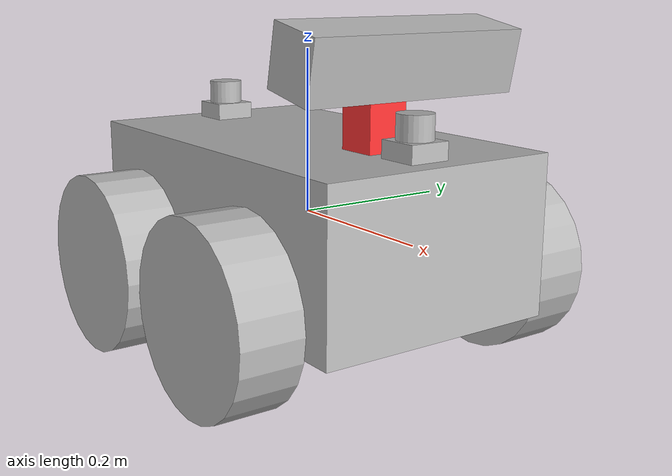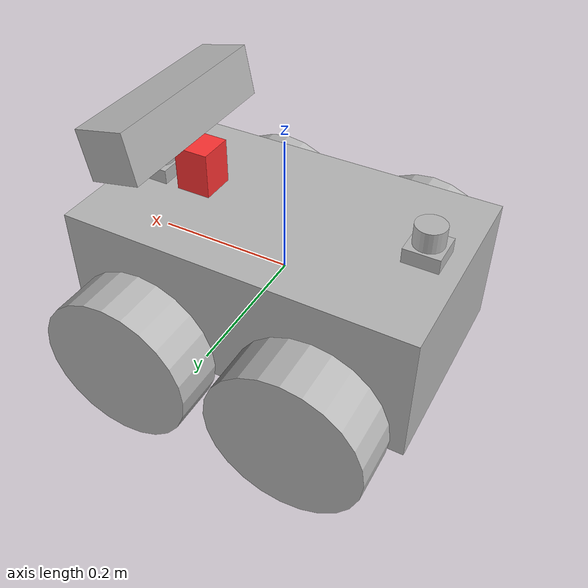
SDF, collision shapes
<?xml version='1.0'?>
<sdf version='1.6'>
    <model name='Nerpio'>
        <link name='chassis'>
            <pose frame=''>0 0 0 0 -0 0</pose>
            <inertial>
                <mass>14</mass>
                <inertia>
                    <ixx>0.147117</ixx>
                    <ixy>0</ixy>
                    <ixz>0</ixz>
                    <iyy>0.334951</iyy>
                    <iyz>0</iyz>
                    <izz>0.397834</izz>
                </inertia>
            </inertial>
            <self_collide>0</self_collide>
            <kinematic>0</kinematic>
            <visual name='visual'>
                <geometry>
                    <mesh>
                        <uri>model://nerpio/meshes/chassis.dae</uri>
                    </mesh>
                </geometry>
                <material>
                    <shader type='pixel'/>
                    <emissive>0 0 0 1</emissive>
                </material>
                <pose frame=''>0 0 0 0 -0 0</pose>
                <cast_shadows>1</cast_shadows>
                <transparency>0</transparency>
            </visual>
            <collision name='collision'>
                <laser_retro>0</laser_retro>
                <max_contacts>10</max_contacts>
                <pose frame=''>0 0 0 0 -0 0</pose>
                <geometry>
                    <box>
                        <size>0.501 0.3 0.19</size>
                    </box>
                </geometry>
                <surface>
                    <friction>
                        <ode>
                            <mu>1</mu>
                            <mu2>1</mu2>
                            <fdir1>0 0 0</fdir1>
                            <slip1>0</slip1>
                            <slip2>0</slip2>
                        </ode>
                        <torsional>
                            <coefficient>1</coefficient>
                            <patch_radius>0</patch_radius>
                            <surface_radius>0</surface_radius>
                            <use_patch_radius>1</use_patch_radius>
                            <ode>
                                <slip>0</slip>
                            </ode>
                        </torsional>
                    </friction>
                    <bounce>
                        <restitution_coefficient>0</restitution_coefficient>
                        <threshold>1e+06</threshold>
                    </bounce>
                    <contact>
                        <collide_without_contact>0</collide_without_contact>
                        <collide_without_contact_bitmask>1</collide_without_contact_bitmask>
                        <collide_bitmask>1</collide_bitmask>
                        <ode>
                            <soft_cfm>0</soft_cfm>
                            <soft_erp>0.2</soft_erp>
                            <kp>1e+13</kp>
                            <kd>1</kd>
                            <max_vel>0.01</max_vel>
                            <min_depth>0</min_depth>
                        </ode>
                        <bullet>
                            <split_impulse>1</split_impulse>
                            <split_impulse_penetration_threshold>-0.01</split_impulse_penetration_threshold>
                            <soft_cfm>0</soft_cfm>
                            <soft_erp>0.2</soft_erp>
                            <kp>1e+13</kp>
                            <kd>1</kd>
                        </bullet>
                    </contact>
                </surface>
            </collision>
        </link>
        <link name='hokuyo2::link'>
            <pose frame=''>-0.2 0 0.11 0 -0 3.14</pose>
            <inertial>
                <mass>0.1</mass>
                <inertia>
                    <ixx>1</ixx>
                    <ixy>0</ixy>
                    <ixz>0</ixz>
                    <iyy>1</iyy>
                    <iyz>0</iyz>
                    <izz>1</izz>
                </inertia>
            </inertial>
            <self_collide>0</self_collide>
            <kinematic>0</kinematic>
            <sensor name='laser' type='ray'>
                <pose frame=''>0.01 0 0.0175 0 -0 0</pose>
                <ray>
                    <scan>
                        <horizontal>
                            <samples>520</samples>
                            <resolution>1</resolution>
                            <min_angle>-2.26889</min_angle>
                            <max_angle>2.2689</max_angle>
                        </horizontal>
                        <vertical>
                            <samples>1</samples>
                            <min_angle>0</min_angle>
                            <max_angle>0</max_angle>
                        </vertical>
                    </scan>
                    <range>
                        <min>0.08</min>
                        <max>10</max>
                        <resolution>0.01</resolution>
                    </range>
                </ray>
                <plugin name="laser" filename="libgazebo_ros_laser.so">
                    <topicName>/nerpio/rearscan</topicName>
                    <frameName>/hokuyo_rear_link</frameName>
                </plugin>
                <always_on>1</always_on>
                <update_rate>30</update_rate>
                <visualize>1</visualize>
            </sensor>
            <visual name='visual'>
                <geometry>
                    <mesh>
                        <uri>model://nerpio/meshes/hokuyo.dae</uri>
                    </mesh>
                </geometry>
                <material>
                    <shader type='pixel'/>
                </material>
                <pose frame=''>0 0 0 0 -0 0</pose>
                <cast_shadows>1</cast_shadows>
                <transparency>0</transparency>
            </visual>
            <collision name='collision-base'>
                <laser_retro>0</laser_retro>
                <max_contacts>10</max_contacts>
                <pose frame=''>0 0 -0.0145 0 -0 0</pose>
                <geometry>
                    <box>
                        <size>0.05 0.05 0.041</size>
                    </box>
                </geometry>
                <surface>
                    <friction>
                        <ode>
                            <mu>1</mu>
                            <mu2>1</mu2>
                            <fdir1>0 0 0</fdir1>
                            <slip1>0</slip1>
                            <slip2>0</slip2>
                        </ode>
                        <torsional>
                            <coefficient>1</coefficient>
                            <patch_radius>0</patch_radius>
                            <surface_radius>0</surface_radius>
                            <use_patch_radius>1</use_patch_radius>
                            <ode>
                                <slip>0</slip>
                            </ode>
                        </torsional>
                    </friction>
                    <bounce>
                        <restitution_coefficient>0</restitution_coefficient>
                        <threshold>1e+06</threshold>
                    </bounce>
                    <contact>
                        <collide_without_contact>0</collide_without_contact>
                        <collide_without_contact_bitmask>1</collide_without_contact_bitmask>
                        <collide_bitmask>1</collide_bitmask>
                        <ode>
                            <soft_cfm>0</soft_cfm>
                            <soft_erp>0.2</soft_erp>
                            <kp>1e+13</kp>
                            <kd>1</kd>
                            <max_vel>0.01</max_vel>
                            <min_depth>0</min_depth>
                        </ode>
                        <bullet>
                            <split_impulse>1</split_impulse>
                            <split_impulse_penetration_threshold>-0.01</split_impulse_penetration_threshold>
                            <soft_cfm>0</soft_cfm>
                            <soft_erp>0.2</soft_erp>
                            <kp>1e+13</kp>
                            <kd>1</kd>
                        </bullet>
                    </contact>
                </surface>
            </collision>
            <collision name='collision-top'>
                <laser_retro>0</laser_retro>
                <max_contacts>10</max_contacts>
                <pose frame=''>0 0 0.0205 0 -0 0</pose>
                <geometry>
                    <cylinder>
                        <radius>0.021</radius>
                        <length>0.029</length>
                    </cylinder>
                </geometry>
                <surface>
                    <friction>
                        <ode>
                            <mu>1</mu>
                            <mu2>1</mu2>
                            <fdir1>0 0 0</fdir1>
                            <slip1>0</slip1>
                            <slip2>0</slip2>
                        </ode>
                        <torsional>
                            <coefficient>1</coefficient>
                            <patch_radius>0</patch_radius>
                            <surface_radius>0</surface_radius>
                            <use_patch_radius>1</use_patch_radius>
                            <ode>
                                <slip>0</slip>
                            </ode>
                        </torsional>
                    </friction>
                    <bounce>
                        <restitution_coefficient>0</restitution_coefficient>
                        <threshold>1e+06</threshold>
                    </bounce>
                    <contact>
                        <collide_without_contact>0</collide_without_contact>
                        <collide_without_contact_bitmask>1</collide_without_contact_bitmask>
                        <collide_bitmask>1</collide_bitmask>
                        <ode>
                            <soft_cfm>0</soft_cfm>
                            <soft_erp>0.2</soft_erp>
                            <kp>1e+13</kp>
                            <kd>1</kd>
                            <max_vel>0.01</max_vel>
                            <min_depth>0</min_depth>
                        </ode>
                        <bullet>
                            <split_impulse>1</split_impulse>
                            <split_impulse_penetration_threshold>-0.01</split_impulse_penetration_threshold>
                            <soft_cfm>0</soft_cfm>
                            <soft_erp>0.2</soft_erp>
                            <kp>1e+13</kp>
                            <kd>1</kd>
                        </bullet>
                    </contact>
                </surface>
            </collision>
        </link>
        <link name='hokuyo::link'>
            <pose frame=''>0.2 -0 0.11 0 -0 0</pose>
            <inertial>
                <mass>0.1</mass>
                <inertia>
                    <ixx>1</ixx>
                    <ixy>0</ixy>
                    <ixz>0</ixz>
                    <iyy>1</iyy>
                    <iyz>0</iyz>
                    <izz>1</izz>
                </inertia>
            </inertial>
            <self_collide>0</self_collide>
            <kinematic>0</kinematic>
            <sensor name='laser' type='ray'>
                <pose frame=''>0.01 0 0.0175 0 -0 0</pose>
                <ray>
                    <scan>
                        <horizontal>
                            <samples>520</samples>
                            <resolution>1</resolution>
                            <min_angle>-2.26889</min_angle>
                            <max_angle>2.2689</max_angle>
                        </horizontal>
                        <vertical>
                            <samples>1</samples>
                            <min_angle>0</min_angle>
                            <max_angle>0</max_angle>
                        </vertical>
                    </scan>
                    <range>
                        <min>0.08</min>
                        <max>10</max>
                        <resolution>0.01</resolution>
                    </range>
                </ray>
                <plugin name="laser" filename="libgazebo_ros_laser.so">
                    <topicName>/nerpio/frontscan</topicName>
                    <frameName>/hokuyo_front_link</frameName>
                </plugin>
                <always_on>1</always_on>
                <update_rate>30</update_rate>
                <visualize>1</visualize>
            </sensor>
            <visual name='visual'>
                <geometry>
                    <mesh>
                        <uri>model://nerpio/meshes/hokuyo.dae</uri>
                    </mesh>
                </geometry>
                <material>
                    <shader type='pixel'/>
                </material>
                <pose frame=''>0 0 0 0 -0 0</pose>
                <cast_shadows>1</cast_shadows>
                <transparency>0</transparency>
            </visual>
            <collision name='collision-base'>
                <laser_retro>0</laser_retro>
                <max_contacts>10</max_contacts>
                <pose frame=''>0 0 -0.0145 0 -0 0</pose>
                <geometry>
                    <box>
                        <size>0.05 0.05 0.041</size>
                    </box>
                </geometry>
                <surface>
                    <friction>
                        <ode>
                            <mu>1</mu>
                            <mu2>1</mu2>
                            <fdir1>0 0 0</fdir1>
                            <slip1>0</slip1>
                            <slip2>0</slip2>
                        </ode>
                        <torsional>
                            <coefficient>1</coefficient>
                            <patch_radius>0</patch_radius>
                            <surface_radius>0</surface_radius>
                            <use_patch_radius>1</use_patch_radius>
                            <ode>
                                <slip>0</slip>
                            </ode>
                        </torsional>
                    </friction>
                    <bounce>
                        <restitution_coefficient>0</restitution_coefficient>
                        <threshold>1e+06</threshold>
                    </bounce>
                    <contact>
                        <collide_without_contact>0</collide_without_contact>
                        <collide_without_contact_bitmask>1</collide_without_contact_bitmask>
                        <collide_bitmask>1</collide_bitmask>
                        <ode>
                            <soft_cfm>0</soft_cfm>
                            <soft_erp>0.2</soft_erp>
                            <kp>1e+13</kp>
                            <kd>1</kd>
                            <max_vel>0.01</max_vel>
                            <min_depth>0</min_depth>
                        </ode>
                        <bullet>
                            <split_impulse>1</split_impulse>
                            <split_impulse_penetration_threshold>-0.01</split_impulse_penetration_threshold>
                            <soft_cfm>0</soft_cfm>
                            <soft_erp>0.2</soft_erp>
                            <kp>1e+13</kp>
                            <kd>1</kd>
                        </bullet>
                    </contact>
                </surface>
            </collision>
            <collision name='collision-top'>
                <laser_retro>0</laser_retro>
                <max_contacts>10</max_contacts>
                <pose frame=''>0 0 0.0205 0 -0 0</pose>
                <geometry>
                    <cylinder>
                        <radius>0.021</radius>
                        <length>0.029</length>
                    </cylinder>
                </geometry>
                <surface>
                    <friction>
                        <ode>
                            <mu>1</mu>
                            <mu2>1</mu2>
                            <fdir1>0 0 0</fdir1>
                            <slip1>0</slip1>
                            <slip2>0</slip2>
                        </ode>
                        <torsional>
                            <coefficient>1</coefficient>
                            <patch_radius>0</patch_radius>
                            <surface_radius>0</surface_radius>
                            <use_patch_radius>1</use_patch_radius>
                            <ode>
                                <slip>0</slip>
                            </ode>
                        </torsional>
                    </friction>
                    <bounce>
                        <restitution_coefficient>0</restitution_coefficient>
                        <threshold>1e+06</threshold>
                    </bounce>
                    <contact>
                        <collide_without_contact>0</collide_without_contact>
                        <collide_without_contact_bitmask>1</collide_without_contact_bitmask>
                        <collide_bitmask>1</collide_bitmask>
                        <ode>
                            <soft_cfm>0</soft_cfm>
                            <soft_erp>0.2</soft_erp>
                            <kp>1e+13</kp>
                            <kd>1</kd>
                            <max_vel>0.01</max_vel>
                            <min_depth>0</min_depth>
                        </ode>
                        <bullet>
                            <split_impulse>1</split_impulse>
                            <split_impulse_penetration_threshold>-0.01</split_impulse_penetration_threshold>
                            <soft_cfm>0</soft_cfm>
                            <soft_erp>0.2</soft_erp>
                            <kp>1e+13</kp>
                            <kd>1</kd>
                        </bullet>
                    </contact>
                </surface>
            </collision>
        </link>
        <link name='kinect::link'>
            <pose frame=''>0.17 -0 0.2 0 0.2 0</pose>
            <inertial>
                <mass>0.1</mass>
                <inertia>
                    <ixx>1</ixx>
                    <ixy>0</ixy>
                    <ixz>0</ixz>
                    <iyy>1</iyy>
                    <iyz>0</iyz>
                    <izz>1</izz>
                </inertia>
            </inertial>
            <self_collide>0</self_collide>
            <kinematic>0</kinematic>
            <sensor name='camera' type='depth'>
                <update_rate>20</update_rate>
                <camera name='__default__'>
                    <horizontal_fov>1.0472</horizontal_fov>
                    <image>
                        <width>640</width>
                        <height>480</height>
                        <format>R8G8B8</format>
                    </image>
                    <clip>
                        <near>0.05</near>
                        <far>3</far>
                    </clip>
                </camera>

                <plugin name="camera_plugin" filename="libgazebo_ros_openni_kinect.so">
                    <baseline>0.2</baseline>
                    <alwaysOn>true</alwaysOn>
                    <updateRate>0.0</updateRate>
                    <cameraName>camera_ir</cameraName>
                    <imageTopicName>/camera/depth/image_raw</imageTopicName>
                    <cameraInfoTopicName>/camera/depth/camera_info</cameraInfoTopicName>
                    <depthImageTopicName>/camera/depth/image_raw</depthImageTopicName>
                    <depthImageInfoTopicName>/camera/depth/camera_info</depthImageInfoTopicName>
                    <pointCloudTopicName>/camera/depth/points</pointCloudTopicName>
                    <frameName>camera_link</frameName>
                    <pointCloudCutoff>0.05</pointCloudCutoff>
                    <distortionK1>0</distortionK1>
                    <distortionK2>0</distortionK2>
                    <distortionK3>0</distortionK3>
                    <distortionT1>0</distortionT1>
                    <distortionT2>0</distortionT2>
                    <CxPrime>0</CxPrime>
                    <Cx>0</Cx>
                    <Cy>0</Cy>
                    <focalLength>0</focalLength>
                    <hackBaseline>0</hackBaseline>
                </plugin>

                <always_on>1</always_on>
                <visualize>1</visualize>
            </sensor>
            <visual name='visual'>
                <geometry>
                    <mesh>
                        <uri>model://nerpio/meshes/kinect.dae</uri>
                    </mesh>
                </geometry>
                <material>
                    <shader type='pixel'/>
                </material>
                <pose frame=''>0 0 0 0 -0 0</pose>
                <cast_shadows>1</cast_shadows>
                <transparency>0</transparency>
            </visual>
            <collision name='collision'>
                <laser_retro>0</laser_retro>
                <max_contacts>10</max_contacts>
                <pose frame=''>0 0 0 0 -0 0</pose>
                <geometry>
                    <box>
                        <size>0.073 0.276 0.072</size>
                    </box>
                </geometry>
                <surface>
                    <friction>
                        <ode>
                            <mu>1</mu>
                            <mu2>1</mu2>
                            <fdir1>0 0 0</fdir1>
                            <slip1>0</slip1>
                            <slip2>0</slip2>
                        </ode>
                        <torsional>
                            <coefficient>1</coefficient>
                            <patch_radius>0</patch_radius>
                            <surface_radius>0</surface_radius>
                            <use_patch_radius>1</use_patch_radius>
                            <ode>
                                <slip>0</slip>
                            </ode>
                        </torsional>
                    </friction>
                    <bounce>
                        <restitution_coefficient>0</restitution_coefficient>
                        <threshold>1e+06</threshold>
                    </bounce>
                    <contact>
                        <collide_without_contact>0</collide_without_contact>
                        <collide_without_contact_bitmask>1</collide_without_contact_bitmask>
                        <collide_bitmask>1</collide_bitmask>
                        <ode>
                            <soft_cfm>0</soft_cfm>
                            <soft_erp>0.2</soft_erp>
                            <kp>1e+13</kp>
                            <kd>1</kd>
                            <max_vel>0.01</max_vel>
                            <min_depth>0</min_depth>
                        </ode>
                        <bullet>
                            <split_impulse>1</split_impulse>
                            <split_impulse_penetration_threshold>-0.01</split_impulse_penetration_threshold>
                            <soft_cfm>0</soft_cfm>
                            <soft_erp>0.2</soft_erp>
                            <kp>1e+13</kp>
                            <kd>1</kd>
                        </bullet>
                    </contact>
                </surface>
            </collision>
        </link>
        <link name='left_front_wheel'>
            <pose frame=''>0.125 0.201 -0.06 1.5707 -0 0</pose>
            <inertial>
                <mass>1.5</mass>
                <inertia>
                    <ixx>0.00524062</ixx>
                    <iyy>0.00524062</iyy>
                    <izz>0.009075</izz>
                    <ixy>0</ixy>
                    <ixz>0</ixz>
                    <iyz>0</iyz>
                </inertia>
            </inertial>
            <self_collide>0</self_collide>
            <kinematic>0</kinematic>
            <visual name='visual'>
                <geometry>
                    <mesh>
                        <uri>model://nerpio/meshes/wheel.dae</uri>
                    </mesh>
                </geometry>
                <material>
                    <shader type='pixel'/>
                </material>
                <pose frame=''>0 0 0 0 -0 0</pose>
                <cast_shadows>1</cast_shadows>
                <transparency>0</transparency>
            </visual>
            <collision name='collision'>
                <laser_retro>0</laser_retro>
                <max_contacts>10</max_contacts>
                <pose frame=''>0 0 0 0 -0 0</pose>
                <geometry>
                    <cylinder>
                        <radius>0.11</radius>
                        <length>0.075</length>
                    </cylinder>
                </geometry>
                <surface>
                    <friction>
                        <ode>
                            <mu>1</mu>
                            <mu2>1</mu2>
                            <fdir1>0 0 0</fdir1>
                            <slip1>0.5</slip1>
                            <slip2>0</slip2>
                        </ode>
                        <torsional>
                            <coefficient>1</coefficient>
                            <patch_radius>0</patch_radius>
                            <surface_radius>0</surface_radius>
                            <use_patch_radius>1</use_patch_radius>
                            <ode>
                                <slip>0</slip>
                            </ode>
                        </torsional>
                    </friction>
                    <bounce>
                        <restitution_coefficient>0</restitution_coefficient>
                        <threshold>1e+06</threshold>
                    </bounce>
                    <contact>
                        <collide_without_contact>0</collide_without_contact>
                        <collide_without_contact_bitmask>1</collide_without_contact_bitmask>
                        <collide_bitmask>1</collide_bitmask>
                        <ode>
                            <soft_cfm>0</soft_cfm>
                            <soft_erp>0.2</soft_erp>
                            <kp>1e+13</kp>
                            <kd>1</kd>
                            <max_vel>0.01</max_vel>
                            <min_depth>0</min_depth>
                        </ode>
                        <bullet>
                            <split_impulse>1</split_impulse>
                            <split_impulse_penetration_threshold>-0.01</split_impulse_penetration_threshold>
                            <soft_cfm>0</soft_cfm>
                            <soft_erp>0.2</soft_erp>
                            <kp>1e+13</kp>
                            <kd>1</kd>
                        </bullet>
                    </contact>
                </surface>
            </collision>
        </link>
        <link name='left_rear_wheel'>
            <pose frame=''>-0.125 0.201 -0.06 1.5707 -0 0</pose>
            <inertial>
                <mass>1.5</mass>
                <inertia>
                    <ixx>0.00524062</ixx>
                    <iyy>0.00524062</iyy>
                    <izz>0.009075</izz>
                    <ixy>0</ixy>
                    <ixz>0</ixz>
                    <iyz>0</iyz>
                </inertia>
            </inertial>
            <self_collide>0</self_collide>
            <kinematic>0</kinematic>
            <visual name='visual'>
                <geometry>
                    <mesh>
                        <uri>model://nerpio/meshes/wheel.dae</uri>
                    </mesh>
                </geometry>
                <material>
                    <shader type='pixel'/>
                </material>
                <pose frame=''>0 0 0 0 -0 0</pose>
                <cast_shadows>1</cast_shadows>
                <transparency>0</transparency>
            </visual>
            <collision name='collision'>
                <laser_retro>0</laser_retro>
                <max_contacts>10</max_contacts>
                <pose frame=''>0 0 0 0 -0 0</pose>
                <geometry>
                    <cylinder>
                        <radius>0.11</radius>
                        <length>0.075</length>
                    </cylinder>
                </geometry>
                <surface>
                    <friction>
                        <ode>
                            <mu>1</mu>
                            <mu2>1</mu2>
                            <fdir1>0 0 0</fdir1>
                            <slip1>0.5</slip1>
                            <slip2>0</slip2>
                        </ode>
                        <torsional>
                            <coefficient>1</coefficient>
                            <patch_radius>0</patch_radius>
                            <surface_radius>0</surface_radius>
                            <use_patch_radius>1</use_patch_radius>
                            <ode>
                                <slip>0</slip>
                            </ode>
                        </torsional>
                    </friction>
                    <bounce>
                        <restitution_coefficient>0</restitution_coefficient>
                        <threshold>1e+06</threshold>
                    </bounce>
                    <contact>
                        <collide_without_contact>0</collide_without_contact>
                        <collide_without_contact_bitmask>1</collide_without_contact_bitmask>
                        <collide_bitmask>1</collide_bitmask>
                        <ode>
                            <soft_cfm>0</soft_cfm>
                            <soft_erp>0.2</soft_erp>
                            <kp>1e+13</kp>
                            <kd>1</kd>
                            <max_vel>0.01</max_vel>
                            <min_depth>0</min_depth>
                        </ode>
                        <bullet>
                            <split_impulse>1</split_impulse>
                            <split_impulse_penetration_threshold>-0.01</split_impulse_penetration_threshold>
                            <soft_cfm>0</soft_cfm>
                            <soft_erp>0.2</soft_erp>
                            <kp>1e+13</kp>
                            <kd>1</kd>
                        </bullet>
                    </contact>
                </surface>
            </collision>
        </link>
        <link name='link_0'>
            <pose frame=''>0.13 -0 0.11 -1e-06 -0 -0.001705</pose>
            <inertial>
                <mass>0.1</mass>
                <inertia>
                    <ixx>0.166667</ixx>
                    <ixy>0</ixy>
                    <ixz>0</ixz>
                    <iyy>0.166667</iyy>
                    <iyz>0</iyz>
                    <izz>0.166667</izz>
                </inertia>
                <pose frame=''>0 0 0 0 -0 0</pose>
            </inertial>
            <self_collide>0</self_collide>
            <kinematic>0</kinematic>
            <gravity>1</gravity>
            <visual name='ModelPreview_1::link_0::visual_1'>
                <pose frame=''>0 0 0 0 -0 0</pose>
                <geometry>
                    <cylinder>
                        <radius>0.03</radius>
                        <length>0.1</length>
                    </cylinder>
                </geometry>
                <material>
                    <lighting>1</lighting>
                    <script>
                        <uri>file://media/materials/scripts/gazebo.material</uri>
                        <name>Gazebo/Grey</name>
                    </script>
                    <shader type='pixel'>
                        <normal_map>__default__</normal_map>
                    </shader>
                    <ambient>1 0 0.2 1</ambient>
                    <diffuse>1 0.2 0.2 1</diffuse>
                    <specular>1 0.01 0.01 1</specular>
                    <emissive>0 0 0 1</emissive>
                </material>
                <transparency>0</transparency>
                <cast_shadows>1</cast_shadows>
            </visual>
            <collision name='collision'>
                <laser_retro>0</laser_retro>
                <max_contacts>10</max_contacts>
                <pose frame=''>0 0 0 0 -0 0</pose>
                <geometry>
                    <box>
                        <size>0.05 0.05 0.1</size>
                    </box>
                </geometry>
                <surface>
                    <friction>
                        <ode>
                            <mu>1</mu>
                            <mu2>1</mu2>
                            <fdir1>0 0 0</fdir1>
                            <slip1>0</slip1>
                            <slip2>0</slip2>
                        </ode>
                        <torsional>
                            <coefficient>1</coefficient>
                            <patch_radius>0</patch_radius>
                            <surface_radius>0</surface_radius>
                            <use_patch_radius>1</use_patch_radius>
                            <ode>
                                <slip>0</slip>
                            </ode>
                        </torsional>
                    </friction>
                    <bounce>
                        <restitution_coefficient>0</restitution_coefficient>
                        <threshold>1e+06</threshold>
                    </bounce>
                    <contact>
                        <collide_without_contact>0</collide_without_contact>
                        <collide_without_contact_bitmask>1</collide_without_contact_bitmask>
                        <collide_bitmask>1</collide_bitmask>
                        <ode>
                            <soft_cfm>0</soft_cfm>
                            <soft_erp>0.2</soft_erp>
                            <kp>1e+13</kp>
                            <kd>1</kd>
                            <max_vel>0.01</max_vel>
                            <min_depth>0</min_depth>
                        </ode>
                        <bullet>
                            <split_impulse>1</split_impulse>
                            <split_impulse_penetration_threshold>-0.01</split_impulse_penetration_threshold>
                            <soft_cfm>0</soft_cfm>
                            <soft_erp>0.2</soft_erp>
                            <kp>1e+13</kp>
                            <kd>1</kd>
                        </bullet>
                    </contact>
                </surface>
            </collision>
        </link>
        <link name='right_front_wheel'>
            <pose frame=''>0.125 -0.201 -0.06 1.5707 -0 0</pose>
            <inertial>
                <mass>1.5</mass>
                <inertia>
                    <ixx>0.00524062</ixx>
                    <iyy>0.00524062</iyy>
                    <izz>0.009075</izz>
                    <ixy>0</ixy>
                    <ixz>0</ixz>
                    <iyz>0</iyz>
                </inertia>
            </inertial>
            <self_collide>0</self_collide>
            <kinematic>0</kinematic>
            <visual name='visual'>
                <geometry>
                    <mesh>
                        <uri>model://nerpio/meshes/wheel.dae</uri>
                    </mesh>
                </geometry>
                <material>
                    <shader type='pixel'/>
                </material>
                <pose frame=''>0 0 0 0 -0 0</pose>
                <cast_shadows>1</cast_shadows>
                <transparency>0</transparency>
            </visual>
            <collision name='collision'>
                <laser_retro>0</laser_retro>
                <max_contacts>10</max_contacts>
                <pose frame=''>0 0 0 0 -0 0</pose>
                <geometry>
                    <cylinder>
                        <radius>0.11</radius>
                        <length>0.075</length>
                    </cylinder>
                </geometry>
                <surface>
                    <friction>
                        <ode>
                            <mu>1</mu>
                            <mu2>1</mu2>
                            <fdir1>0 0 0</fdir1>
                            <slip1>0.5</slip1>
                            <slip2>0</slip2>
                        </ode>
                        <torsional>
                            <coefficient>1</coefficient>
                            <patch_radius>0</patch_radius>
                            <surface_radius>0</surface_radius>
                            <use_patch_radius>1</use_patch_radius>
                            <ode>
                                <slip>0</slip>
                            </ode>
                        </torsional>
                    </friction>
                    <bounce>
                        <restitution_coefficient>0</restitution_coefficient>
                        <threshold>1e+06</threshold>
                    </bounce>
                    <contact>
                        <collide_without_contact>0</collide_without_contact>
                        <collide_without_contact_bitmask>1</collide_without_contact_bitmask>
                        <collide_bitmask>1</collide_bitmask>
                        <ode>
                            <soft_cfm>0</soft_cfm>
                            <soft_erp>0.2</soft_erp>
                            <kp>1e+13</kp>
                            <kd>1</kd>
                            <max_vel>0.01</max_vel>
                            <min_depth>0</min_depth>
                        </ode>
                        <bullet>
                            <split_impulse>1</split_impulse>
                            <split_impulse_penetration_threshold>-0.01</split_impulse_penetration_threshold>
                            <soft_cfm>0</soft_cfm>
                            <soft_erp>0.2</soft_erp>
                            <kp>1e+13</kp>
                            <kd>1</kd>
                        </bullet>
                    </contact>
                </surface>
            </collision>
        </link>
        <link name='right_rear_wheel'>
            <pose frame=''>-0.125 -0.201 -0.06 1.5707 -0 0</pose>
            <inertial>
                <mass>1.5</mass>
                <inertia>
                    <ixx>0.00524062</ixx>
                    <iyy>0.00524062</iyy>
                    <izz>0.009075</izz>
                    <ixy>0</ixy>
                    <ixz>0</ixz>
                    <iyz>0</iyz>
                </inertia>
            </inertial>
            <self_collide>0</self_collide>
            <kinematic>0</kinematic>
            <visual name='visual'>
                <geometry>
                    <mesh>
                        <uri>model://nerpio/meshes/wheel.dae</uri>
                    </mesh>
                </geometry>
                <material>
                    <shader type='pixel'/>
                </material>
                <pose frame=''>0 0 0 0 -0 0</pose>
                <cast_shadows>1</cast_shadows>
                <transparency>0</transparency>
            </visual>
            <collision name='collision'>
                <laser_retro>0</laser_retro>
                <max_contacts>10</max_contacts>
                <pose frame=''>0 0 0 0 -0 0</pose>
                <geometry>
                    <cylinder>
                        <radius>0.11</radius>
                        <length>0.075</length>
                    </cylinder>
                </geometry>
                <surface>
                    <friction>
                        <ode>
                            <mu>1</mu>
                            <mu2>1</mu2>
                            <fdir1>0 0 0</fdir1>
                            <slip1>0.5</slip1>
                            <slip2>0</slip2>
                        </ode>
                        <torsional>
                            <coefficient>1</coefficient>
                            <patch_radius>0</patch_radius>
                            <surface_radius>0</surface_radius>
                            <use_patch_radius>1</use_patch_radius>
                            <ode>
                                <slip>0</slip>
                            </ode>
                        </torsional>
                    </friction>
                    <bounce>
                        <restitution_coefficient>0</restitution_coefficient>
                        <threshold>1e+06</threshold>
                    </bounce>
                    <contact>
                        <collide_without_contact>0</collide_without_contact>
                        <collide_without_contact_bitmask>1</collide_without_contact_bitmask>
                        <collide_bitmask>1</collide_bitmask>
                        <ode>
                            <soft_cfm>0</soft_cfm>
                            <soft_erp>0.2</soft_erp>
                            <kp>1e+13</kp>
                            <kd>1</kd>
                            <max_vel>0.01</max_vel>
                            <min_depth>0</min_depth>
                        </ode>
                        <bullet>
                            <split_impulse>1</split_impulse>
                            <split_impulse_penetration_threshold>-0.01</split_impulse_penetration_threshold>
                            <soft_cfm>0</soft_cfm>
                            <soft_erp>0.2</soft_erp>
                            <kp>1e+13</kp>
                            <kd>1</kd>
                        </bullet>
                    </contact>
                </surface>
            </collision>
        </link>
        <joint name='chassis_JOINT_0' type='fixed'>
            <parent>chassis</parent>
            <child>link_0</child>
            <pose frame=''>0 0 0 0 -0 0</pose>
            <physics>
                <ode>
                    <limit>
                        <cfm>0</cfm>
                        <erp>0.2</erp>
                    </limit>
                    <suspension>
                        <cfm>0</cfm>
                        <erp>0.2</erp>
                    </suspension>
                </ode>
            </physics>
        </joint>
        <joint name='front_hokuyo_joint' type='fixed'>
            <parent>chassis</parent>
            <child>hokuyo::link</child>
            <pose frame=''>0 0 0 0 -0 0</pose>
            <physics>
                <ode>
                    <limit>
                        <cfm>0</cfm>
                        <erp>0.2</erp>
                    </limit>
                    <suspension>
                        <cfm>0</cfm>
                        <erp>0.2</erp>
                    </suspension>
                </ode>
            </physics>
        </joint>
        <joint name='kinect_joint' type='fixed'>
            <parent>chassis</parent>
            <child>kinect::link</child>
            <pose frame=''>0 0 0 0 -0 0</pose>
            <physics>
                <ode>
                    <limit>
                        <cfm>0</cfm>
                        <erp>0.2</erp>
                    </limit>
                    <suspension>
                        <cfm>0</cfm>
                        <erp>0.2</erp>
                    </suspension>
                </ode>
            </physics>
        </joint>
        <joint name='left_front' type='revolute'>
            <parent>chassis</parent>
            <child>left_front_wheel</child>
            <pose frame=''>0 0 0 0 -0 0</pose>
            <axis>
                <xyz>0 1 0</xyz>
                <use_parent_model_frame>1</use_parent_model_frame>
                <limit>
                    <lower>-1e+16</lower>
                    <upper>1e+16</upper>
                    <effort>-1</effort>
                    <velocity>-1</velocity>
                </limit>
                <dynamics>
                    <spring_reference>0</spring_reference>
                    <spring_stiffness>0</spring_stiffness>
                    <damping>0</damping>
                    <friction>0</friction>
                </dynamics>
            </axis>
            <physics>
                <ode>
                    <limit>
                        <cfm>0</cfm>
                        <erp>0.2</erp>
                    </limit>
                    <suspension>
                        <cfm>0</cfm>
                        <erp>0.2</erp>
                    </suspension>
                </ode>
            </physics>
        </joint>
        <joint name='left_rear' type='revolute'>
            <parent>chassis</parent>
            <child>left_rear_wheel</child>
            <pose frame=''>0 0 0 0 -0 0</pose>
            <axis>
                <xyz>0 1 0</xyz>
                <use_parent_model_frame>1</use_parent_model_frame>
                <limit>
                    <lower>-1e+16</lower>
                    <upper>1e+16</upper>
                    <effort>-1</effort>
                    <velocity>-1</velocity>
                </limit>
                <dynamics>
                    <spring_reference>0</spring_reference>
                    <spring_stiffness>0</spring_stiffness>
                    <damping>0</damping>
                    <friction>0</friction>
                </dynamics>
            </axis>
            <physics>
                <ode>
                    <limit>
                        <cfm>0</cfm>
                        <erp>0.2</erp>
                    </limit>
                    <suspension>
                        <cfm>0</cfm>
                        <erp>0.2</erp>
                    </suspension>
                </ode>
            </physics>
        </joint>
        <joint name='rear_hokuyo_joint' type='fixed'>
            <parent>chassis</parent>
            <child>hokuyo2::link</child>
            <pose frame=''>0 0 0 0 -0 0</pose>
            <physics>
                <ode>
                    <limit>
                        <cfm>0</cfm>
                        <erp>0.2</erp>
                    </limit>
                    <suspension>
                        <cfm>0</cfm>
                        <erp>0.2</erp>
                    </suspension>
                </ode>
            </physics>
        </joint>
        <joint name='right_front' type='revolute'>
            <parent>chassis</parent>
            <child>right_front_wheel</child>
            <pose frame=''>0 0 0 0 -0 0</pose>
            <axis>
                <xyz>0 1 0</xyz>
                <use_parent_model_frame>1</use_parent_model_frame>
                <limit>
                    <lower>-1e+16</lower>
                    <upper>1e+16</upper>
                    <effort>-1</effort>
                    <velocity>-1</velocity>
                </limit>
                <dynamics>
                    <spring_reference>0</spring_reference>
                    <spring_stiffness>0</spring_stiffness>
                    <damping>0</damping>
                    <friction>0</friction>
                </dynamics>
            </axis>
            <physics>
                <ode>
                    <limit>
                        <cfm>0</cfm>
                        <erp>0.2</erp>
                    </limit>
                    <suspension>
                        <cfm>0</cfm>
                        <erp>0.2</erp>
                    </suspension>
                </ode>
            </physics>
        </joint>
        <joint name='right_rear' type='revolute'>
            <parent>chassis</parent>
            <child>right_rear_wheel</child>
            <pose frame=''>0 0 0 0 -0 0</pose>
            <axis>
                <xyz>0 1 0</xyz>
                <use_parent_model_frame>1</use_parent_model_frame>
                <limit>
                    <lower>-1e+16</lower>
                    <upper>1e+16</upper>
                    <effort>-1</effort>
                    <velocity>-1</velocity>
                </limit>
                <dynamics>
                    <spring_reference>0</spring_reference>
                    <spring_stiffness>0</spring_stiffness>
                    <damping>0</damping>
                    <friction>0</friction>
                </dynamics>
            </axis>
            <physics>
                <ode>
                    <limit>
                        <cfm>0</cfm>
                        <erp>0.2</erp>
                    </limit>
                    <suspension>
                        <cfm>0</cfm>
                        <erp>0.2</erp>
                    </suspension>
                </ode>
            </physics>
        </joint>
        <static>0</static>
        <allow_auto_disable>1</allow_auto_disable>
        <plugin filename="libgazebo_ros_skid_steer_drive.so" name="skid_steer_drive_controller">
            <updateRate>100.0</updateRate>
            <robotNamespace>/</robotNamespace>
            <leftFrontJoint>left_front</leftFrontJoint>
            <rightFrontJoint>right_front</rightFrontJoint>
            <leftRearJoint>left_rear</leftRearJoint>
            <rightRearJoint>right_rear</rightRearJoint>
            <wheelSeparation>0.4</wheelSeparation>
            <wheelDiameter>0.215</wheelDiameter>
            <robotBaseFrame>base_link</robotBaseFrame>
            <MaxForce>5.0</MaxForce>
            <torque>200</torque>
            <commandTopic>cmd_vel</commandTopic>
            <odometryTopic>odom</odometryTopic>
            <odometryFrame>odom</odometryFrame>
            <broadcastTF>1</broadcastTF>
        </plugin>
    </model>
</sdf>
